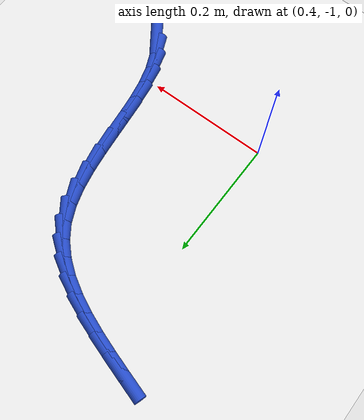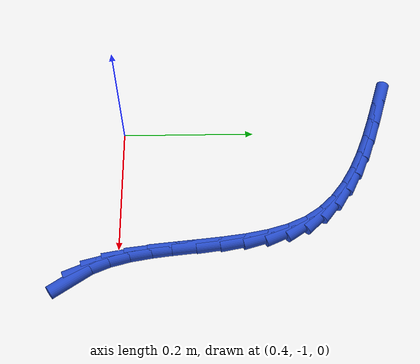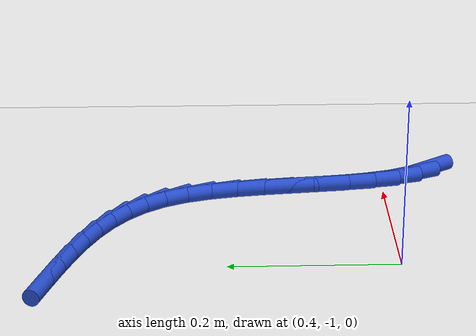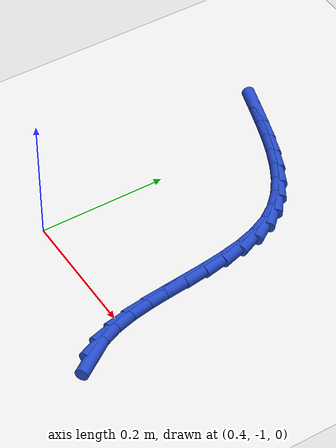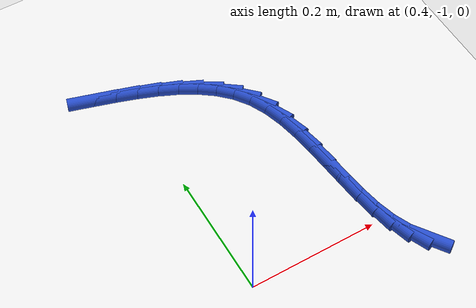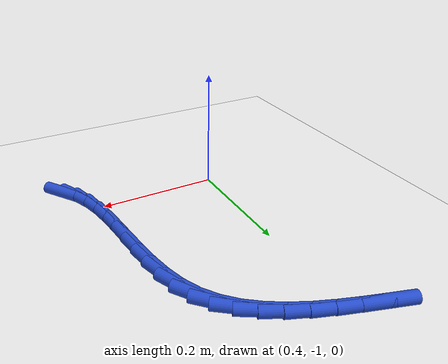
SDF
<sdf version="1.6">
 <world name="default">
  <model name="ground_plane">
   <static>1</static>
   <link name="link">
    <collision name="collision">
     <geometry><plane><normal>0 0 1</normal><size>100 100</size></plane></geometry>
     <surface><friction><ode><mu>100</mu><mu2>50</mu2></ode></friction></surface>
    </collision>
    <visual name="visual">
     <cast_shadows>0</cast_shadows>
     <geometry><plane><normal>0 0 1</normal><size>100 100</size></plane></geometry>
     <material>
      <script><uri>file://media/materials/scripts/gazebo.material</uri><name>Gazebo/WhiteGlow</name></script>
     </material>
    </visual>
   </link>
  </model>
  <model name="line">
   <link name="link_197">
    <pose>0.6491393698761354 -1.0605188506235252 0.01 0 1.57 -0.967693883721989</pose>
    <collision name="collision">
     <geometry><cylinder><radius>0.01</radius><length>0.08</length></cylinder></geometry>
    </collision>
    <visual name="visual">
     <material>
      <script><name>Gazebo/Blue</name><uri>file://media/materials/scripts/gazebo.material</uri></script>
     </material>
     <geometry><cylinder><radius>0.01</radius><length>0.08</length></cylinder></geometry>
    </visual>
   </link>
   <link name="link_198">
    <pose>0.6338829170766273 -1.0383663459589099 0.01 0 1.57 -1.164366406926806</pose>
    <collision name="collision">
     <geometry><cylinder><radius>0.01</radius><length>0.08</length></cylinder></geometry>
    </collision>
    <visual name="visual">
     <material>
      <script><name>Gazebo/Blue</name><uri>file://media/materials/scripts/gazebo.material</uri></script>
     </material>
     <geometry><cylinder><radius>0.01</radius><length>0.08</length></cylinder></geometry>
    </visual>
   </link>
   <link name="link_199">
    <pose>0.622601334672915 -1.0121540816017736 0.01 0 1.57 -1.3017126081581503</pose>
    <collision name="collision">
     <geometry><cylinder><radius>0.01</radius><length>0.08</length></cylinder></geometry>
    </collision>
    <visual name="visual">
     <material>
      <script><name>Gazebo/Blue</name><uri>file://media/materials/scripts/gazebo.material</uri></script>
     </material>
     <geometry><cylinder><radius>0.01</radius><length>0.08</length></cylinder></geometry>
    </visual>
   </link>
   <link name="link_200">
    <pose>0.6144694470275167 -0.9826663527736869 0.01 0 1.57 -1.391154015926166</pose>
    <collision name="collision">
     <geometry><cylinder><radius>0.01</radius><length>0.08</length></cylinder></geometry>
    </collision>
    <visual name="visual">
     <material>
      <script><name>Gazebo/Blue</name><uri>file://media/materials/scripts/gazebo.material</uri></script>
     </material>
     <geometry><cylinder><radius>0.01</radius><length>0.08</length></cylinder></geometry>
    </visual>
   </link>
   <link name="link_201">
    <pose>0.6086620785029502 -0.9506874546962201 0.01 0 1.57 -1.4435982255581723</pose>
    <collision name="collision">
     <geometry><cylinder><radius>0.01</radius><length>0.08</length></cylinder></geometry>
    </collision>
    <visual name="visual">
     <material>
      <script><name>Gazebo/Blue</name><uri>file://media/materials/scripts/gazebo.material</uri></script>
     </material>
     <geometry><cylinder><radius>0.01</radius><length>0.08</length></cylinder></geometry>
    </visual>
   </link>
   <link name="link_202">
    <pose>0.604354053461733 -0.917001682590943 0.01 0 1.57 -1.4661802307631806</pose>
    <collision name="collision">
     <geometry><cylinder><radius>0.01</radius><length>0.08</length></cylinder></geometry>
    </collision>
    <visual name="visual">
     <material>
      <script><name>Gazebo/Blue</name><uri>file://media/materials/scripts/gazebo.material</uri></script>
     </material>
     <geometry><cylinder><radius>0.01</radius><length>0.08</length></cylinder></geometry>
    </visual>
   </link>
   <link name="link_203">
    <pose>0.600720196266383 -0.8823933316794257 0.01 0 1.57 -1.4622965738125546</pose>
    <collision name="collision">
     <geometry><cylinder><radius>0.01</radius><length>0.08</length></cylinder></geometry>
    </collision>
    <visual name="visual">
     <material>
      <script><name>Gazebo/Blue</name><uri>file://media/materials/scripts/gazebo.material</uri></script>
     </material>
     <geometry><cylinder><radius>0.01</radius><length>0.08</length></cylinder></geometry>
    </visual>
   </link>
   <link name="link_204">
    <pose>0.5969353312794177 -0.8476466971832378 0.01 0 1.57 -1.4320754168084062</pose>
    <collision name="collision">
     <geometry><cylinder><radius>0.01</radius><length>0.08</length></cylinder></geometry>
    </collision>
    <visual name="visual">
     <material>
      <script><name>Gazebo/Blue</name><uri>file://media/materials/scripts/gazebo.material</uri></script>
     </material>
     <geometry><cylinder><radius>0.01</radius><length>0.08</length></cylinder></geometry>
    </visual>
   </link>
   <link name="link_205">
    <pose>0.5921742828633548 -0.8135460743239491 0.01 0 1.57 -1.3725666897649955</pose>
    <collision name="collision">
     <geometry><cylinder><radius>0.01</radius><length>0.08</length></cylinder></geometry>
    </collision>
    <visual name="visual">
     <material>
      <script><name>Gazebo/Blue</name><uri>file://media/materials/scripts/gazebo.material</uri></script>
     </material>
     <geometry><cylinder><radius>0.01</radius><length>0.08</length></cylinder></geometry>
    </visual>
   </link>
   <link name="link_206">
    <pose>0.5856118753807124 -0.7808757583231302 0.01 0 1.57 -1.2777669879419757</pose>
    <collision name="collision">
     <geometry><cylinder><radius>0.01</radius><length>0.08</length></cylinder></geometry>
    </collision>
    <visual name="visual">
     <material>
      <script><name>Gazebo/Blue</name><uri>file://media/materials/scripts/gazebo.material</uri></script>
     </material>
     <geometry><cylinder><radius>0.01</radius><length>0.08</length></cylinder></geometry>
    </visual>
   </link>
   <link name="link_207">
    <pose>0.5764229331940082 -0.7504200444023508 0.01 0 1.57 -1.1393415554790551</pose>
    <collision name="collision">
     <geometry><cylinder><radius>0.01</radius><length>0.08</length></cylinder></geometry>
    </collision>
    <visual name="visual">
     <material>
      <script><name>Gazebo/Blue</name><uri>file://media/materials/scripts/gazebo.material</uri></script>
     </material>
     <geometry><cylinder><radius>0.01</radius><length>0.08</length></cylinder></geometry>
    </visual>
   </link>
   <link name="link_208">
    <pose>0.563782282109708 -0.7229632264318743 0.01 0 1.57 -0.9611467588913981</pose>
    <collision name="collision">
     <geometry><cylinder><radius>0.01</radius><length>0.08</length></cylinder></geometry>
    </collision>
    <visual name="visual">
     <material>
      <script><name>Gazebo/Blue</name><uri>file://media/materials/scripts/gazebo.material</uri></script>
     </material>
     <geometry><cylinder><radius>0.01</radius><length>0.08</length></cylinder></geometry>
    </visual>
   </link>
   <link name="link_209">
    <pose>0.5470969304832475 -0.6990723124679078 0.01 0 1.57 -0.7886794342579466</pose>
    <collision name="collision">
     <geometry><cylinder><radius>0.01</radius><length>0.08</length></cylinder></geometry>
    </collision>
    <visual name="visual">
     <material>
      <script><name>Gazebo/Blue</name><uri>file://media/materials/scripts/gazebo.material</uri></script>
     </material>
     <geometry><cylinder><radius>0.01</radius><length>0.08</length></cylinder></geometry>
    </visual>
   </link>
   <link name="link_210">
    <pose>0.526651880318945 -0.6784926486218458 0.01 0 1.57 -0.6416921878822999</pose>
    <collision name="collision">
     <geometry><cylinder><radius>0.01</radius><length>0.08</length></cylinder></geometry>
    </collision>
    <visual name="visual">
     <material>
      <script><name>Gazebo/Blue</name><uri>file://media/materials/scripts/gazebo.material</uri></script>
     </material>
     <geometry><cylinder><radius>0.01</radius><length>0.08</length></cylinder></geometry>
    </visual>
   </link>
   <link name="link_211">
    <pose>0.5029396336410044 -0.6607753940993988 0.01 0 1.57 -0.5239227439053906</pose>
    <collision name="collision">
     <geometry><cylinder><radius>0.01</radius><length>0.08</length></cylinder></geometry>
    </collision>
    <visual name="visual">
     <material>
      <script><name>Gazebo/Blue</name><uri>file://media/materials/scripts/gazebo.material</uri></script>
     </material>
     <geometry><cylinder><radius>0.01</radius><length>0.08</length></cylinder></geometry>
    </visual>
   </link>
   <link name="link_212">
    <pose>0.4764526924736295 -0.6454717081062784 0.01 0 1.57 -0.43415138374893086</pose>
    <collision name="collision">
     <geometry><cylinder><radius>0.01</radius><length>0.08</length></cylinder></geometry>
    </collision>
    <visual name="visual">
     <material>
      <script><name>Gazebo/Blue</name><uri>file://media/materials/scripts/gazebo.material</uri></script>
     </material>
     <geometry><cylinder><radius>0.01</radius><length>0.08</length></cylinder></geometry>
    </visual>
   </link>
   <link name="link_213">
    <pose>0.44768355884102445 -0.6321327498481955 0.01 0 1.57 -0.3691585952664871</pose>
    <collision name="collision">
     <geometry><cylinder><radius>0.01</radius><length>0.08</length></cylinder></geometry>
    </collision>
    <visual name="visual">
     <material>
      <script><name>Gazebo/Blue</name><uri>file://media/materials/scripts/gazebo.material</uri></script>
     </material>
     <geometry><cylinder><radius>0.01</radius><length>0.08</length></cylinder></geometry>
    </visual>
   </link>
   <link name="link_214">
    <pose>0.417124734767393 -0.6203096785308605 0.01 0 1.57 -0.3256260737185721</pose>
    <collision name="collision">
     <geometry><cylinder><radius>0.01</radius><length>0.08</length></cylinder></geometry>
    </collision>
    <visual name="visual">
     <material>
      <script><name>Gazebo/Blue</name><uri>file://media/materials/scripts/gazebo.material</uri></script>
     </material>
     <geometry><cylinder><radius>0.01</radius><length>0.08</length></cylinder></geometry>
    </visual>
   </link>
   <link name="link_215">
    <pose>0.38526872227693815 -0.6095536533599848 0.01 0 1.57 -0.300968852198772</pose>
    <collision name="collision">
     <geometry><cylinder><radius>0.01</radius><length>0.08</length></cylinder></geometry>
    </collision>
    <visual name="visual">
     <material>
      <script><name>Gazebo/Blue</name><uri>file://media/materials/scripts/gazebo.material</uri></script>
     </material>
     <geometry><cylinder><radius>0.01</radius><length>0.08</length></cylinder></geometry>
    </visual>
   </link>
   <link name="link_216">
    <pose>0.3526080233938656 -0.59941583354128 0.01 0 1.57 -0.2935864631786944</pose>
    <collision name="collision">
     <geometry><cylinder><radius>0.01</radius><length>0.08</length></cylinder></geometry>
    </collision>
    <visual name="visual">
     <material>
      <script><name>Gazebo/Blue</name><uri>file://media/materials/scripts/gazebo.material</uri></script>
     </material>
     <geometry><cylinder><radius>0.01</radius><length>0.08</length></cylinder></geometry>
    </visual>
   </link>
  </model>
 </world>
</sdf>
